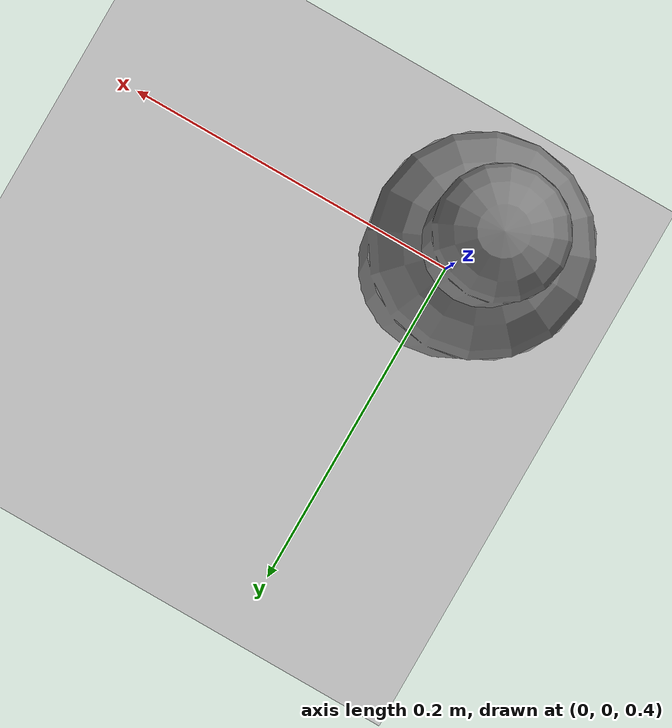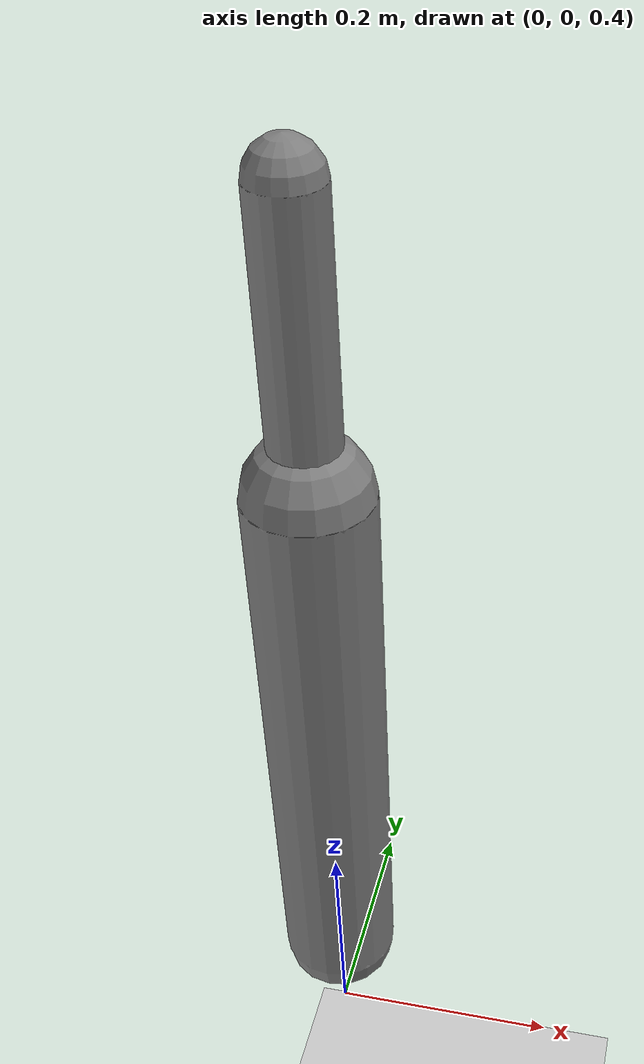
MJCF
<?xml version='1.0' encoding='UTF-8'?>
<mujoco model="RobotModel">
  <option gravity="0 0 -9.81" timestep="0.002" solver="CG" iterations="500" integrator="Euler"/>
  <worldbody>
    <geom name="Floor" type="plane" size="10 10 0.1" pos="0 0 0" rgba="0.8 0.8 0.8 1"/>
    <body name="Limb0" pos="0 0 0.5">
      <geom type="capsule" fromto="0 0 0 0 0 0.5" size="0.05" density="1000" contype="1" conaffinity="1"/>
      <body name="Limb0_fc81283b" pos="0 0 0.5">
        <geom type="capsule" fromto="0 0 0 0 0 0.22595908059510741" size="0.02733008355713476" density="800" contype="1" conaffinity="1"/>
        <joint name="Joint_Limb0_Limb0_fc81283b_0" type="hinge" axis="1 0 0" range="-60 60"/>
      </body>
      <body name="Limb1_fc81283b" pos="0 0 0.5">
        <geom type="capsule" fromto="0 0 0 0 0 0.19425840734280772" size="0.018168446540034577" density="800" contype="1" conaffinity="1"/>
        <joint name="Joint_Limb0_Limb1_fc81283b_0" type="hinge" axis="0 1 0" range="-60 60"/>
      </body>
    </body>
  </worldbody>
  <actuator>
    <position name="position_Actuator_Joint_Limb0_Limb0_fc81283b_0" joint="Joint_Limb0_Limb0_fc81283b_0" gear="1.0"/>
    <position name="position_Actuator_Joint_Limb0_Limb1_fc81283b_0" joint="Joint_Limb0_Limb1_fc81283b_0" gear="1.0"/>
  </actuator>
</mujoco>
